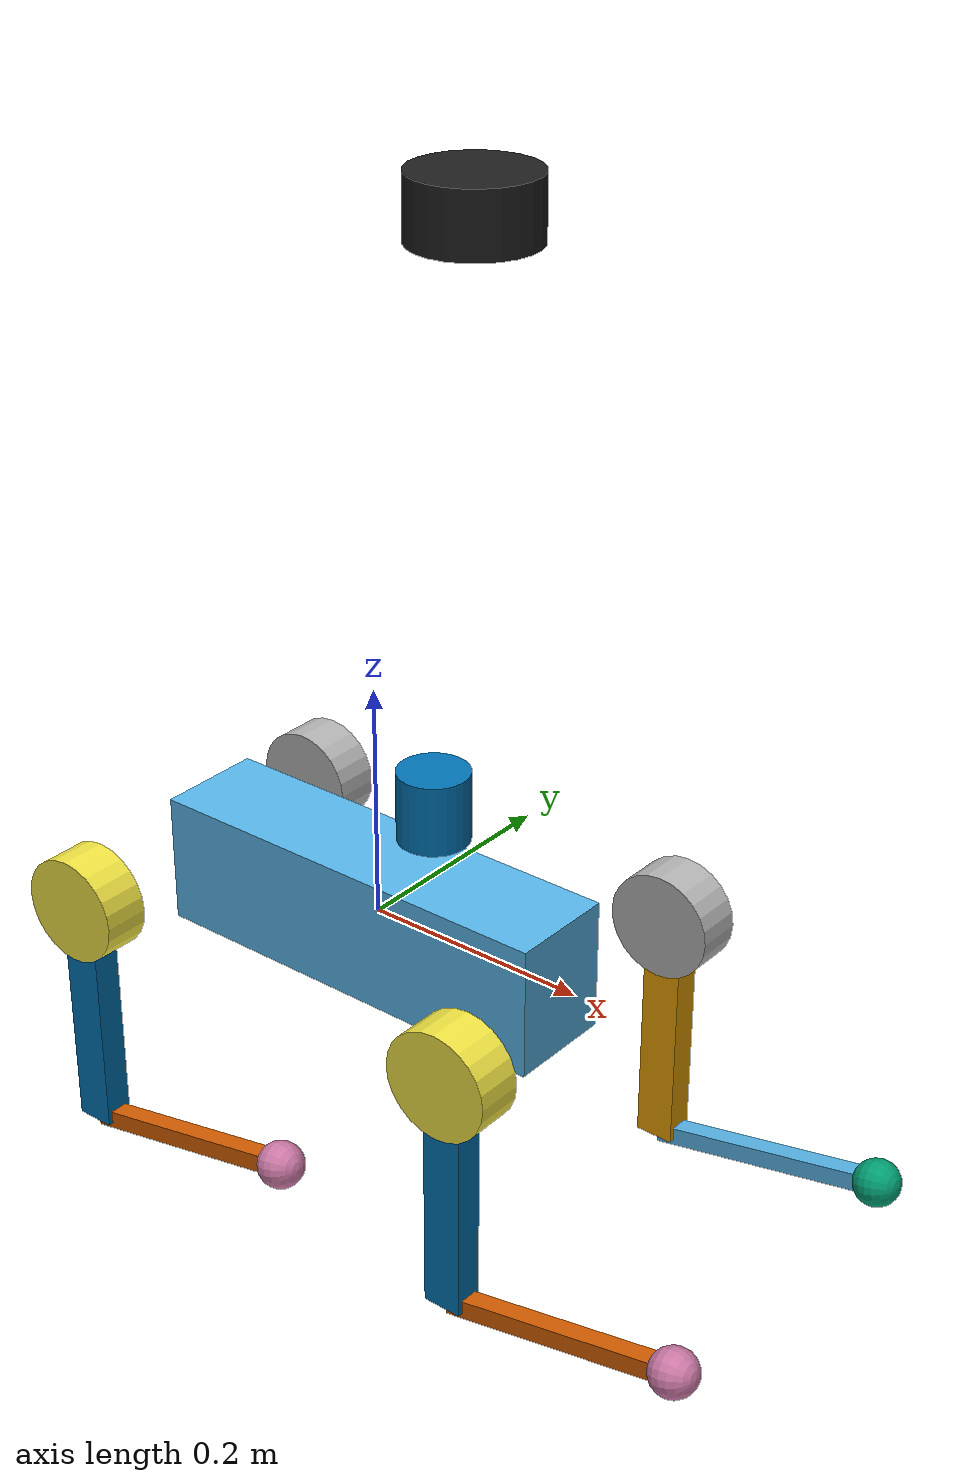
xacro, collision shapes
<?xml version="1.0"?>

<robot name="go2" xmlns:xacro="http://www.ros.org/wiki/xacro">

    <xacro:arg name="DEBUG" default="false"/>

    <xacro:include filename="$(find go2_description)/xacro/const.xacro"/>
    <xacro:include filename="$(find go2_description)/xacro/materials.xacro"/>
    <xacro:include filename="$(find go2_description)/xacro/leg.xacro"/>
    <xacro:include filename="$(find go2_description)/xacro/gazebo.xacro"/>
    <xacro:include filename="$(find go2_description)/xacro/ros2_control.xacro"/>

    <!-- Rotor related joint and link is only for demonstrate location. -->
    <!-- Actually, the rotor will rotate and the joint is not fixed. Reduction ratio should be considered. -->

    <!-- Debug mode will hung up the robot, use "true" or "false" to switch it. -->
    <xacro:if value="$(arg DEBUG)">
        <link name="odom"/>
        <joint name="base_static_joint" type="fixed">
            <origin rpy="0 0 0" xyz="0 0 0"/>
            <parent link="odom"/>
            <child link="base"/>
        </joint>
    </xacro:if>

    <link name="base_link">
        <visual>
            <origin rpy="0 0 0" xyz="0 0 0"/>
            <geometry>
                <box size="0.001 0.001 0.001"/>
            </geometry>
        </visual>
    </link>

    <joint name="floating_base" type="fixed">
        <origin rpy="0 0 0" xyz="0 0 0"/>
        <parent link="base_link"/>
        <child link="trunk"/>
    </joint>

    <link name="trunk">
        <visual>
            <origin rpy="0 0 0" xyz="0 0 0"/>
            <geometry>
                <mesh filename="package://go2_description/meshes/trunk.dae" scale="1 1 1"/>
            </geometry>
        </visual>
        <collision>
            <origin rpy="0 0 0" xyz="0 0 0"/>
            <geometry>
                <box size="${trunk_length} ${trunk_width} ${trunk_height}"/>
            </geometry>
        </collision>
        <inertial>
            <origin rpy="0 0 0" xyz="${trunk_com_x} ${trunk_com_y} ${trunk_com_z}"/>
            <mass value="${trunk_mass}"/>
            <inertia
                ixx="${trunk_ixx}" ixy="${trunk_ixy}" ixz="${trunk_ixz}"
                iyy="${trunk_iyy}" iyz="${trunk_iyz}"
                izz="${trunk_izz}"/>
        </inertial>
    </link>

    <joint name="imu_joint" type="fixed">
        <parent link="trunk"/>
        <child link="imu_link"/>
        <origin rpy="0 0 0" xyz="0 0 0"/>
    </joint>

    <link name="imu_link">
        <inertial>
            <mass value="0.001"/>
            <origin rpy="0 0 0" xyz="0 0 0"/>
            <inertia ixx="0.0001" ixy="0" ixz="0" iyy="0.0001" iyz="0" izz="0.0001"/>
        </inertial>
        <visual>
            <origin rpy="0 0 0" xyz="0 0 0"/>
            <geometry>
                <box size="0.001 0.001 0.001"/>
            </geometry>
        </visual>
        <collision>
            <origin rpy="0 0 0" xyz="0 0 0"/>
            <geometry>
                <box size=".001 .001 .001"/>
            </geometry>
        </collision>
    </link>

    <xacro:leg name="FR" mirror="-1" mirror_dae= "False" front_hind="1"  front_hind_dae="True"  />
    <xacro:leg name="FL" mirror="1"  mirror_dae="True"   front_hind="1"  front_hind_dae="True"  />
    <xacro:leg name="RR" mirror="-1" mirror_dae="False"  front_hind="-1" front_hind_dae="False" />
    <xacro:leg name="RL" mirror="1"  mirror_dae="True"   front_hind="-1" front_hind_dae="False" />

    <joint name="laser_joint" type="fixed">
        <parent link="trunk"/>
        <child link="laser_link"/>
        <origin rpy="0 0 0" xyz="0.05 0.0 0.1"/>
    </joint>

    <link name="laser_link">
        <collision>
            <origin xyz="0.05 0 0.5" rpy="0 0 0"/>
            <geometry>
                <cylinder radius="0.05" length="0.05"/>
            </geometry>
        </collision>
        <visual>
            <origin xyz="0 0 0" rpy="0 0 0"/>
            <geometry>
                <cylinder radius="0.05" length="0.07"/>
            </geometry>
            <material name="black"/>
        </visual>
        <inertial>
            <mass value="1e-5" />
            <origin xyz="0 0 0" rpy="0 0 0"/>
            <inertia ixx="1e-6" ixy="0" ixz="0" iyy="1e-6" iyz="0" izz="1e-6" />
        </inertial>
    </link>

    <gazebo reference="laser_link">
        <sensor type="ray" name="lidar">
        <pose>0 0 0 0 0 0</pose>
        <visualize>false</visualize>
        <update_rate>30</update_rate>
        <ray>
            <scan>
                <horizontal>
                    <samples>450</samples>
                    <resolution>1</resolution>
                    <min_angle>0.0</min_angle>
                    <max_angle>6.28319</max_angle>
                </horizontal>
            </scan>
            <range>
                <min>0.4</min>
                <max>35.0</max>
                <resolution>0.015</resolution>
            </range>
            <noise>
                <type>gaussian</type>
                <mean>0.0</mean>
                <stddev>0.01</stddev>
            </noise>
        </ray>
        <plugin name="lidar_controller" filename="libgazebo_ros_ray_sensor.so">
            <ros>
                <remapping>~/out:=scan</remapping>
            </ros>
            <output_type>sensor_msgs/LaserScan</output_type>
            <frame_name>laser_link</frame_name>
        </plugin>
        </sensor>
    </gazebo>

    <joint name="l2_laser_joint" type="fixed">
        <parent link="trunk"/>
        <child  link="l2_laser_link"/>
        <origin xyz="0.06 0.0 0.12" rpy="0 0 0"/>
    </joint>

    <link name="l2_laser_link">
        <inertial><mass value="1e-4"/><origin xyz="0 0 0" rpy="0 0 0"/>
            <inertia ixx="1e-6" ixy="0" ixz="0" iyy="1e-6" iyz="0" izz="1e-6"/></inertial>
        <visual><origin xyz="0 0 0" rpy="0 0 0"/>
            <geometry><cylinder radius="0.03" length="0.06"/></geometry></visual>
        <collision><origin xyz="0 0 0" rpy="0 0 0"/>
            <geometry><cylinder radius="0.03" length="0.06"/></geometry></collision>
    </link>

    <gazebo reference="l2_laser_link">
        <sensor type="ray" name="unilidar_l2">
            <pose>0 0 0 0 0 0</pose>
            <visualize>false</visualize>
            <update_rate>4.5</update_rate>
            <ray>
                <scan>
                    <horizontal>
                    <samples>720</samples><resolution>1</resolution>
                    <min_angle>-3.14159</min_angle><max_angle>3.14159</max_angle>
                    </horizontal>
                    <vertical>
                    <samples>48</samples><resolution>1</resolution>
                    <min_angle>-0.872665</min_angle><max_angle>0.872665</max_angle>
                    </vertical>
                </scan>
                <range><min>0.05</min><max>30.0</max><resolution>0.005</resolution></range>
                <noise type="gaussian"><mean>0.0</mean><stddev>0.008</stddev></noise>
            </ray>
            <plugin name="l2_lidar_pc2" filename="libgazebo_ros_ray_sensor.so">
            <output_type>sensor_msgs/PointCloud2</output_type>
            <frame_name>l2_laser_link</frame_name>
            <ros><remapping>~/out:=/unilidar/cloud</remapping></ros>
            </plugin>
        </sensor>
    </gazebo>

    <!-- drunk -->

    <gazebo>
        <plugin name="p3d_ground_truth" filename="libgazebo_ros_p3d.so">
            <body_name>base_link</body_name>
            <topic_name>odom</topic_name>
            <frame_name>odom</frame_name>
            <update_rate>100</update_rate>
        </plugin>
    </gazebo>

</robot>

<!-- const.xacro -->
<robot xmlns:xacro="http://www.ros.org/wiki/xacro">

    <!-- Constants for robot dimensions -->
    <xacro:property name="PI" value="3.1415926535897931"/>
    <xacro:property name="stick_mass" value="0.00001"/>

    <!-- simplified collision value -->
    <xacro:property name="trunk_width" value="0.0935"/>
    <xacro:property name="trunk_length" value="0.3762"/>
    <xacro:property name="trunk_height" value="0.114"/>
    <xacro:property name="hip_radius" value="0.046"/>
    <xacro:property name="hip_length" value="0.04"/>
    <xacro:property name="thigh_shoulder_radius" value="0.041"/>
    <xacro:property name="thigh_shoulder_length" value="0.032"/>
    <xacro:property name="thigh_width" value="0.0245"/>
    <xacro:property name="thigh_height" value="0.034"/>
    <xacro:property name="calf_width" value="0.016"/>
    <xacro:property name="calf_height" value="0.016"/>
    <xacro:property name="foot_radius" value="0.02"/>
    <xacro:property name="stick_radius" value="0.01"/>
    <xacro:property name="stick_length" value="0.2"/>

    <!-- kinematic value -->
    <xacro:property name="thigh_offset" value="0.0955"/>
    <xacro:property name="thigh_length" value="0.213"/>
    <xacro:property name="calf_length" value="0.213"/>

    <!-- leg offset from trunk center value -->
    <xacro:property name="leg_offset_x" value="0.1934"/>
    <xacro:property name="leg_offset_y" value="0.0465"/>
    <xacro:property name="hip_offset" value="0.0955"/>

    <!-- offset of link locations (left front) -->
    <xacro:property name="hip_offset_x" value="0.1934"/>
    <xacro:property name="hip_offset_y" value="0.0465"/>
    <xacro:property name="hip_offset_z" value="0.0"/>

    <xacro:property name="thigh_offset_x" value="0"/>
    <xacro:property name="thigh_offset_y" value="0.0955"/>
    <xacro:property name="thigh_offset_z" value="0.0"/>

    <xacro:property name="calf_offset_x" value="0.0"/>
    <xacro:property name="calf_offset_y" value="0.0"/>
    <xacro:property name="calf_offset_z" value="-0.213"/>

    <!-- joint limits -->
    <xacro:property name="damping" value="0.0"/>
    <xacro:property name="friction" value="0.0"/>
    <xacro:property name="hip_position_max" value="1.0472"/>
    <xacro:property name="hip_position_min" value="-1.0472"/>
    <xacro:property name="hip_velocity_max" value="30.1"/>
    <xacro:property name="hip_torque_max" value="23.7"/>
    <xacro:property name="thigh_position_max" value="3.4907"/>
    <xacro:property name="thigh_position_min" value="-1.5708"/>
    <xacro:property name="thigh_velocity_max" value="30.1"/>
    <xacro:property name="thigh_torque_max" value="23.7"/>
    <xacro:property name="calf_position_max" value="-0.83776"/>
    <xacro:property name="calf_position_min" value="-2.7227"/>
    <xacro:property name="calf_velocity_max" value="20.06"/>
    <xacro:property name="calf_torque_max" value="35.55"/>

    <!-- dynamics inertial value -->
    <!-- trunk -->
    <xacro:property name="trunk_mass" value="6.921"/>
    <xacro:property name="trunk_com_x" value="0.021112"/>
    <xacro:property name="trunk_com_y" value="0.00"/>
    <xacro:property name="trunk_com_z" value="-0.005366"/>
    <xacro:property name="trunk_ixx" value="0.02448"/>
    <xacro:property name="trunk_ixy" value="0.00012166"/>
    <xacro:property name="trunk_ixz" value="0.0014849"/>
    <xacro:property name="trunk_iyy" value="0.098077"/>
    <xacro:property name="trunk_iyz" value="-3.12E-05"/>
    <xacro:property name="trunk_izz" value="0.107"/>

    <!-- hip (left front) -->
    <xacro:property name="hip_mass" value="0.678"/>
    <xacro:property name="hip_com_x" value="-0.0054"/>
    <xacro:property name="hip_com_y" value="0.00194"/>
    <xacro:property name="hip_com_z" value="-0.000105"/>
    <xacro:property name="hip_ixx" value="0.00048"/>
    <xacro:property name="hip_ixy" value="-3.01E-06"/>
    <xacro:property name="hip_ixz" value="1.11E-06"/>
    <xacro:property name="hip_iyy" value="0.000884"/>
    <xacro:property name="hip_iyz" value="-1.42E-06"/>
    <xacro:property name="hip_izz" value="0.000596"/>

    <!-- thigh -->
    <xacro:property name="thigh_mass" value="1.152"/>
    <xacro:property name="thigh_com_x" value="-0.00374"/>
    <xacro:property name="thigh_com_y" value="-0.0223"/>
    <xacro:property name="thigh_com_z" value="-0.0327"/>
    <xacro:property name="thigh_ixx" value="0.00584"/>
    <xacro:property name="thigh_ixy" value="8.72E-05"/>
    <xacro:property name="thigh_ixz" value="-0.000289"/>
    <xacro:property name="thigh_iyy" value="0.0058"/>
    <xacro:property name="thigh_iyz" value="0.000808"/>
    <xacro:property name="thigh_izz" value="0.00103"/>

    <!-- calf -->
    <xacro:property name="calf_mass" value="0.154"/>
    <xacro:property name="calf_com_x" value="0.00548"/>
    <xacro:property name="calf_com_y" value="-0.000975"/>
    <xacro:property name="calf_com_z" value="-0.115"/>
    <xacro:property name="calf_ixx" value="0.00108"/>
    <xacro:property name="calf_ixy" value="3.4E-07"/>
    <xacro:property name="calf_ixz" value="1.72E-05"/>
    <xacro:property name="calf_iyy" value="0.0011"/>
    <xacro:property name="calf_iyz" value="8.28E-06"/>
    <xacro:property name="calf_izz" value="3.29E-05"/>

    <!-- foot -->
    <xacro:property name="foot_mass" value="0.06"/>

</robot>

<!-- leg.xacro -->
<robot xmlns:xacro="http://www.ros.org/wiki/xacro">

    <xacro:include filename="$(find go2_description)/xacro/transmission.xacro"/>

    <xacro:macro name="leg" params="name mirror mirror_dae front_hind front_hind_dae">

        <joint name="${name}_hip_joint" type="revolute">
            <xacro:if value="${(mirror_dae == False) and (front_hind_dae == True)}">
                <origin rpy="0 0 0" xyz="${leg_offset_x} ${-leg_offset_y} 0"/>
            </xacro:if>
            <xacro:if value="${(mirror_dae == True) and (front_hind_dae == True)}">
                <origin rpy="0 0 0" xyz="${leg_offset_x} ${leg_offset_y} 0"/>
            </xacro:if>
            <xacro:if value="${(mirror_dae == False) and (front_hind_dae == False)}">
                <origin rpy="0 0 0" xyz="${-leg_offset_x} ${-leg_offset_y} 0"/>
            </xacro:if>
            <xacro:if value="${(mirror_dae == True) and (front_hind_dae == False)}">
                <origin rpy="0 0 0" xyz="${-leg_offset_x} ${leg_offset_y} 0"/>
            </xacro:if>
            <parent link="trunk"/>
            <child link="${name}_hip"/>
            <axis xyz="1 0 0"/>
            <dynamics damping="${damping}" friction="${friction}"/>
            <xacro:if value="${(mirror_dae == True)}">
                <limit effort="${hip_torque_max}" velocity="${hip_velocity_max}" lower="${hip_position_min}" upper="${hip_position_max}"/>
            </xacro:if>
            <xacro:if value="${(mirror_dae == False)}">
                <limit effort="${hip_torque_max}" velocity="${hip_velocity_max}" lower="${-hip_position_max}" upper="${-hip_position_min}"/>
            </xacro:if>
        </joint>

        <link name="${name}_hip">
            <visual>
                <xacro:if value="${(mirror_dae == True) and (front_hind_dae == True)}">
                    <origin rpy="0 0 0" xyz="0 0 0"/>
                </xacro:if>
                <xacro:if value="${(mirror_dae == False) and (front_hind_dae == True)}">
                    <origin rpy="${PI} 0 0" xyz="0 0 0"/>
                </xacro:if>
                <xacro:if value="${(mirror_dae == True) and (front_hind_dae == False)}">
                    <origin rpy="0 ${PI} 0" xyz="0 0 0"/>
                </xacro:if>
                <xacro:if value="${(mirror_dae == False) and (front_hind_dae == False)}">
                    <origin rpy="${PI} ${PI} 0" xyz="0 0 0"/>
                </xacro:if>
                <geometry>
                    <mesh filename="package://go2_description/meshes/hip.dae" scale="1 1 1"/>
                </geometry>
            </visual>
            <collision>
                <origin rpy="${PI/2.0} 0 0" xyz="0 ${hip_offset*mirror} 0"/>
                <geometry>
                    <cylinder length="${hip_length}" radius="${hip_radius}"/>
                </geometry>
            </collision>
            <inertial>
                <origin rpy="0 0 0" xyz="${hip_com_x*front_hind} ${hip_com_y*mirror} ${hip_com_z}"/>
                <mass value="${hip_mass}"/>
                <inertia
                    ixx="${hip_ixx}" ixy="${hip_ixy*mirror*front_hind}" ixz="${hip_ixz*front_hind}"
                    iyy="${hip_iyy}" iyz="${hip_iyz*mirror}"
                    izz="${hip_izz}"/>
            </inertial>
        </link>

        <joint name="${name}_thigh_joint" type="revolute">
            <origin rpy="0 0 0" xyz="0 ${thigh_offset*mirror} 0"/>
            <parent link="${name}_hip"/>
            <child link="${name}_thigh"/>
            <axis xyz="0 1 0"/>
            <dynamics damping="${damping}" friction="${friction}"/>
            <limit effort="${thigh_torque_max}" velocity="${thigh_velocity_max}" lower="${thigh_position_min}" upper="${thigh_position_max}"/>
        </joint>

        <link name="${name}_thigh">
            <visual>
                <origin rpy="0 0 0" xyz="0 0 0"/>
                <geometry>
                    <xacro:if value="${mirror_dae == True}">
                        <mesh filename="package://go2_description/meshes/thigh.dae" scale="1 1 1"/>
                    </xacro:if>
                    <xacro:if value="${mirror_dae == False}">
                        <mesh filename="package://go2_description/meshes/thigh_mirror.dae" scale="1 1 1"/>
                    </xacro:if>
                </geometry>
            </visual>
            <collision>
                <origin rpy="0 ${PI/2.0} 0" xyz="0 0 ${-thigh_length/2.0}"/>
                <geometry>
                    <box size="${thigh_length} ${thigh_width} ${thigh_height}"/>
                </geometry>
            </collision>
            <inertial>
                <origin rpy="0 0 0" xyz="${thigh_com_x} ${thigh_com_y*mirror} ${thigh_com_z}"/>
                <mass value="${thigh_mass}"/>
                <inertia
                    ixx="${thigh_ixx}" ixy="${thigh_ixy*mirror}" ixz="${thigh_ixz}"
                    iyy="${thigh_iyy}" iyz="${thigh_iyz*mirror}"
                    izz="${thigh_izz}"/>
            </inertial>
        </link>

        <joint name="${name}_calf_joint" type="revolute">
            <origin rpy="0 0 0" xyz="0 0 ${-thigh_length}"/>
            <parent link="${name}_thigh"/>
            <child link="${name}_calf"/>
            <axis xyz="0 1 0"/>
            <dynamics damping="${damping}" friction="${friction}"/>
            <limit effort="${calf_torque_max}" velocity="${calf_velocity_max}" lower="${calf_position_min}" upper="${calf_position_max}"/>
        </joint>

        <link name="${name}_calf">
            <visual>
                <origin rpy="0 0 0" xyz="0 0 0"/>
                <geometry>
                    <mesh filename="package://go2_description/meshes/calf.dae" scale="1 1 1"/>
                </geometry>
            </visual>
            <collision>
                <origin rpy="0 ${PI/2.0} 0" xyz="0 0 ${-calf_length/2.0}"/>
                <geometry>
                    <box size="${calf_length} ${calf_width} ${calf_height}"/>
                </geometry>
            </collision>
            <inertial>
                <origin rpy="0 0 0" xyz="${calf_com_x} ${calf_com_y} ${calf_com_z}"/>
                <mass value="${calf_mass}"/>
                <inertia
                    ixx="${calf_ixx}" ixy="${calf_ixy}" ixz="${calf_ixz}"
                    iyy="${calf_iyy}" iyz="${calf_iyz}"
                    izz="${calf_izz}"/>
            </inertial>
        </link>

        <joint name="${name}_foot_fixed" type="fixed">0
            <origin rpy="0 0 0" xyz="0 0 ${-(calf_length)}"/>
            <parent link="${name}_calf"/>
            <child link="${name}_foot"/>
        </joint>

        <link name="${name}_foot">
            <visual>
                <origin rpy="0 0 0" xyz="0 0 0"/>
                <geometry>
                    <sphere radius="${foot_radius-0.01}"/>
                </geometry>
            </visual>
            <collision>
                <origin rpy="0 0 0" xyz="0 0 0"/>
                <geometry>
                    <sphere radius="${foot_radius}"/>
                </geometry>
            </collision>
            <inertial>
                <mass value="${foot_mass}"/>
                <inertia
                    ixx="${(2*foot_mass)/5.0*(foot_radius*foot_radius)}" ixy="0.0" ixz="0.0"
                    iyy="${(2*foot_mass)/5.0*(foot_radius*foot_radius)}" iyz="0.0"
                    izz="${(2*foot_mass)/5.0*(foot_radius*foot_radius)}"/>
            </inertial>
        </link>

        <xacro:leg_transmission name="${name}"/>
    </xacro:macro>
</robot>
